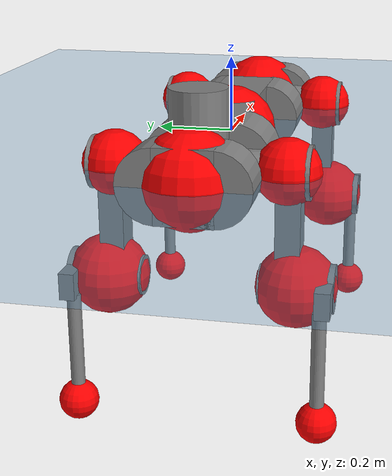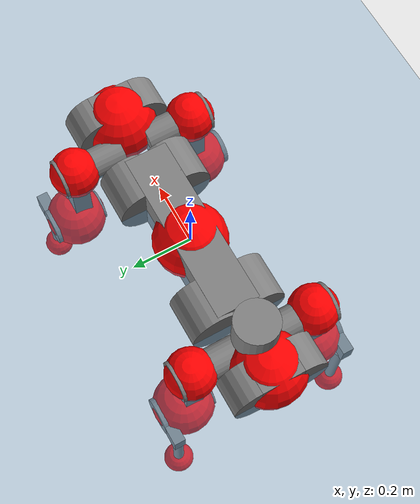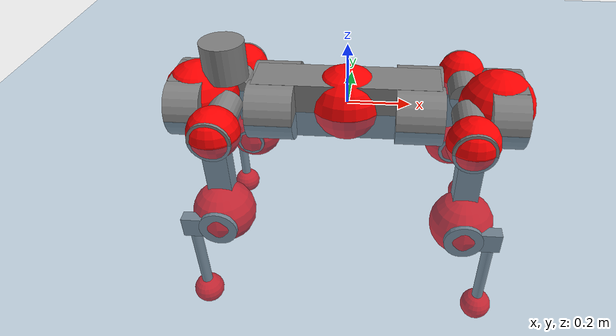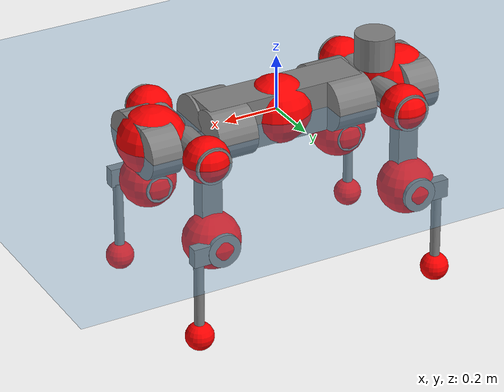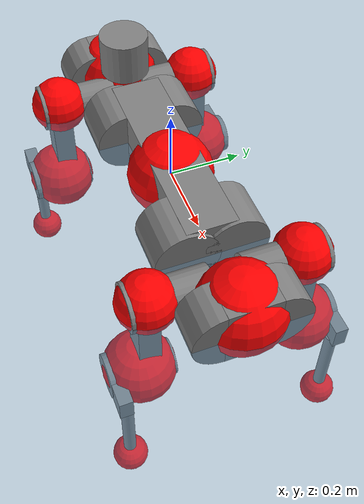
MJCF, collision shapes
<mujoco model="anymal_c">
  <compiler angle="radian" assetdir="assets" balanceinertia="true" inertiafromgeom="false"/>

  <option timestep="0.005" density="1.2" viscosity="2e-05"/>

  <size nkey="1"/>

  <visual>
    <quality shadowsize="8192"/>
    <map shadowclip="0.5"/>
  </visual>

  <default>
    <default class="/">
      <material specular="0" shininess="0.25"/>
      <geom contype="0" conaffinity="0" group="1" solref="-1000 -80"/>
      <site size="0.01 0.005 0.005" group="5"/>
      <general forcelimited="true" forcerange="-80 80" biastype="affine" gainprm="80" biasprm="0 -80 -2"/>
      <default class="anymal_c">
        <joint armature="0.01" damping="0.01" frictionloss="0.1"/>
        <default class="visual">
          <geom type="mesh" group="2"/>
          <default class="visual_zflip"/>
        </default>
        <default class="collision">
          <geom type="cylinder" group="3"/>
          <default class="foot">
            <geom size="0.03 0 0" type="sphere" condim="6" priority="1" friction="0.8 0.02 0.01" solimp="0.015 1 0.03"/>
          </default>
        </default>
      </default>
      <default class="reward_collision_sphere">
        <geom group="5" rgba="1 0 0 1"/>
      </default>
    </default>
  </default>

  <asset>
    <texture type="skybox" colorspace="auto" name="//unnamed_texture_0" builtin="gradient" rgb1="0.95 0.95 0.95" rgb2="0.95 0.95 0.95" width="100" height="600"/>
    <texture type="2d" colorspace="auto" name="texplane" builtin="checker" rgb1="0.345 0.575 0.748" rgb2="0.345 0.575 0.748" markrgb="1 1 1" width="512" height="512"/>
    <texture type="2d" colorspace="linear" name="base" file="base.png"/>
    <texture type="2d" colorspace="linear" name="top_shell" file="top_shell.png"/>
    <texture type="2d" colorspace="linear" name="bottom_shell" file="bottom_shell.png"/>
    <texture type="2d" colorspace="linear" name="remote" file="remote.png"/>
    <texture type="2d" colorspace="linear" name="hatch" file="hatch.png"/>
    <texture type="2d" colorspace="linear" name="handle" file="handle.png"/>
    <texture type="2d" colorspace="linear" name="face" file="face.png"/>
    <texture type="2d" colorspace="linear" name="battery" file="battery.png"/>
    <texture type="2d" colorspace="linear" name="lidar_cage" file="lidar_cage.png"/>
    <texture type="2d" colorspace="linear" name="depth_camera" file="depth_camera.png"/>
    <texture type="2d" colorspace="linear" name="wide_angle_camera" file="wide_angle_camera.png"/>
    <texture type="2d" colorspace="linear" name="lidar" file="lidar.png"/>
    <texture type="2d" colorspace="linear" name="drive" file="drive.png"/>
    <texture type="2d" colorspace="linear" name="hip_l" file="hip_l.png"/>
    <texture type="2d" colorspace="linear" name="shank_l" file="shank_l.png"/>
    <texture type="2d" colorspace="linear" name="foot" file="foot.png"/>
    <texture type="2d" colorspace="linear" name="thigh" file="thigh.png"/>
    <texture type="2d" colorspace="linear" name="shank_r" file="shank_r.png"/>
    <texture type="2d" colorspace="linear" name="hip_r" file="hip_r.png"/>
    <material name="MatPlane" class="/" texture="texplane" texuniform="true" texrepeat="2 2" specular="0.9" shininess="0.5"/>
    <material name="black_plastic" class="/" rgba="0.007 0.007 0.007 1"/>
    <material name="green" class="/" rgba="0.052 0.178 0.033 1"/>
    <material name="red" class="/" rgba="0.178 0.006 0.005 1"/>
    <material name="yellow" class="/" rgba="0.178 0.119 0.006 1"/>
    <material name="lwl" class="/" rgba="0.8 0.8 0.8 1"/>
    <material name="base" class="/" texture="base"/>
    <material name="top_shell" class="/" texture="top_shell"/>
    <material name="bottom_shell" class="/" texture="bottom_shell"/>
    <material name="hip_l" class="/" texture="hip_l"/>
    <material name="thigh" class="/" texture="thigh"/>
    <material name="shank_l" class="/" texture="shank_l"/>
    <material name="foot" class="/" texture="foot"/>
    <material name="hip_r" class="/" texture="hip_r"/>
    <material name="shank" class="/" texture="shank_r"/>
    <material name="hatch" class="/" texture="hatch"/>
    <material name="remote" class="/" texture="remote"/>
    <material name="handle" class="/" texture="handle"/>
    <material name="face" class="/" texture="face"/>
    <material name="depth_camera" class="/" texture="depth_camera"/>
    <material name="wide_angle_camera" class="/" texture="wide_angle_camera"/>
    <material name="battery" class="/" texture="battery"/>
    <material name="lidar_cage" class="/" texture="lidar_cage"/>
    <material name="lidar" class="/" texture="lidar"/>
    <material name="drive" class="/" texture="drive"/>
    <mesh name="base_0" class="/" file="base_0.obj"/>
    <mesh name="base_1" class="/" file="base_1.obj"/>
    <mesh name="base_2" class="/" file="base_2.obj"/>
    <mesh name="base_3" class="/" file="base_3.obj"/>
    <mesh name="base_4" class="/" file="base_4.obj"/>
    <mesh name="base_5" class="/" file="base_5.obj"/>
    <mesh name="top_shell" class="/" file="top_shell.obj"/>
    <mesh name="bottom_shell" class="/" file="bottom_shell.obj"/>
    <mesh name="remote" class="/" file="remote.obj"/>
    <mesh name="handle" class="/" file="handle.obj"/>
    <mesh name="face" class="/" file="face.obj"/>
    <mesh name="wide_angle_camera" class="/" file="wide_angle_camera.obj"/>
    <mesh name="depth_camera" class="/" file="depth_camera.obj"/>
    <mesh name="battery" class="/" file="battery.obj"/>
    <mesh name="lidar_cage" class="/" file="lidar_cage.obj"/>
    <mesh name="lidar" class="/" file="lidar.obj"/>
    <mesh name="drive" class="/" file="drive.obj"/>
    <mesh name="hip_l" class="/" file="hip_l.obj"/>
    <mesh name="thigh" class="/" file="thigh.obj"/>
    <mesh name="shank_l" class="/" file="shank_l.obj"/>
    <mesh name="foot" class="/" file="foot.obj"/>
    <mesh name="hip_r" class="/" file="hip_r.obj"/>
    <mesh name="hatch" class="/" file="hatch.obj"/>
    <mesh name="shank_r" class="/" file="shank_r.obj"/>
  </asset>

  <worldbody>
    <geom name="floor" class="/" size="100 100 0.125" type="plane" group="0" material="MatPlane"/>
    <light name="toplight_shadow" class="/" pos="0 0 5" dir="0.0990148 0.0990148 -0.990148" type="directional" ambient="0.04 0.04 0.04" diffuse="0.55 0.55 0.55" specular="0.12 0.12 0.12"/>
    <light name="toplight_fill" class="/" pos="0 0 5" dir="0.0990148 0.0990148 -0.990148" type="directional" castshadow="false" ambient="0.04 0.04 0.04" diffuse="0.3 0.3 0.3" specular="0.08 0.08 0.08"/>
    <body name="trunk" childclass="anymal_c" pos="-0.00166811 0.000158784 0.000921751" quat="1 -0.00022601 -9.44141e-06 0.000172577">
      <inertial pos="0.000498413 -0.000601191 0.0489532" quat="0.503752 0.499144 0.498869 0.498216" mass="19.7287" diaginertia="0.854087 0.530752 0.228268"/>
      <joint name="//unnamed_joint_0" type="free" armature="0" damping="0" frictionloss="0"/>
      <geom name="//unnamed_geom_1" class="visual" material="green" mesh="base_0"/>
      <geom name="//unnamed_geom_2" class="visual" material="yellow" mesh="base_1"/>
      <geom name="//unnamed_geom_3" class="visual" material="red" mesh="base_2"/>
      <geom name="//unnamed_geom_4" class="visual" material="black_plastic" mesh="base_3"/>
      <geom name="//unnamed_geom_5" class="visual" material="lwl" mesh="base_4"/>
      <geom name="//unnamed_geom_6" class="visual" material="base" mesh="base_5"/>
      <geom name="trunk_1" class="collision" size="0.293073 0.0707419 0.0909538" type="box"/>
      <geom name="trunk_2" class="collision" size="0.0909538 0.0732684" pos="0.230089 0.0676985 0" quat="0.707107 0 0.707107 0"/>
      <geom name="trunk_3" class="collision" size="0.0909538 0.0732684" pos="-0.230089 0.0676985 0" quat="0.707107 0 0.707107 0"/>
      <geom name="trunk_4" class="collision" size="0.0909538 0.0732684" pos="0.230089 -0.0676985 0" quat="0.707107 0 0.707107 0"/>
      <geom name="trunk_5" class="collision" size="0.0909538 0.0732684" pos="-0.230089 -0.0676985 0" quat="0.707107 0 0.707107 0"/>
      <geom name="//unnamed_geom_12" class="visual" material="top_shell" mesh="top_shell"/>
      <geom name="//unnamed_geom_13" class="visual" material="bottom_shell" mesh="bottom_shell"/>
      <geom name="//unnamed_geom_14" class="visual" material="remote" mesh="remote"/>
      <geom name="//unnamed_geom_15" class="visual" material="handle" mesh="handle"/>
      <geom name="//unnamed_geom_16" class="visual" pos="0.438492 0 0" quat="1 0 0 0" material="face" mesh="face"/>
      <geom name="trunk_6" class="collision" size="0.0555829 0.0707419 0.0909538" pos="0.496676 0 0" type="box"/>
      <geom name="//unnamed_geom_18" class="collision" size="0.0909538 0.0555829" pos="0.496676 0.0676985 0" quat="0.707107 0 0.707107 0"/>
      <geom name="//unnamed_geom_19" class="collision" size="0.0909538 0.0555829" pos="0.496676 -0.0676985 0" quat="0.707107 0 0.707107 0"/>
      <geom name="//unnamed_geom_20" class="visual" pos="0.488369 0 -0.02901" quat="0.965926 0 0.258819 0" material="depth_camera" mesh="depth_camera"/>
      <geom name="//unnamed_geom_21" class="visual" pos="0.542694 0 0.0150716" material="wide_angle_camera" mesh="wide_angle_camera"/>
      <geom name="//unnamed_geom_22" class="visual_zflip" pos="-0.438492 0 0" quat="0 0 0 1" material="face" mesh="face"/>
      <geom name="trunk_7" class="collision" size="0.0555829 0.0707419 0.0909538" pos="-0.496676 0 0" quat="0 0 0 1" type="box"/>
      <geom name="//unnamed_geom_24" class="collision" size="0.0909538 0.0555829" pos="-0.496676 -0.0676985 0" quat="0 -0.707107 0 0.707107"/>
      <geom name="//unnamed_geom_25" class="collision" size="0.0909538 0.0555829" pos="-0.496676 0.0676985 0" quat="0 -0.707107 0 0.707107"/>
      <geom name="//unnamed_geom_26" class="visual" pos="-0.488369 0 -0.02901" quat="0 -0.258819 0 0.965926" material="depth_camera" mesh="depth_camera"/>
      <geom name="//unnamed_geom_27" class="visual_zflip" pos="-0.542694 0 0.0150716" quat="0 0 0 1" material="wide_angle_camera" mesh="wide_angle_camera"/>
      <geom name="//unnamed_geom_28" class="visual" material="battery" mesh="battery"/>
      <geom name="//unnamed_geom_29" class="visual" pos="0 0.0727531 0.0296355" quat="0.683013 -0.183013 0.183013 0.683013" material="depth_camera" mesh="depth_camera"/>
      <geom name="//unnamed_geom_30" class="visual" pos="0 -0.0727531 0.0296355" quat="0.683013 0.183013 0.183013 -0.683013" material="depth_camera" mesh="depth_camera"/>
      <geom name="//unnamed_geom_31" class="visual" pos="-0.385069 0 0.073999" quat="1 0 0 0" material="lidar_cage" mesh="lidar_cage"/>
      <geom name="trunk_8" class="collision" size="0.0707419 0.0606359" pos="-0.385069 0 0.134406"/>
      <geom name="//unnamed_geom_33" class="visual" pos="-0.385069 -3.56573e-05 0.143165" quat="0.707107 0 0 -0.707107" material="lidar" mesh="lidar"/>
      <geom name="//unnamed_geom_34" class="visual" pos="0.317259 0.100595 -6.84271e-10" quat="0.258819 0.965926 0 0" material="drive" mesh="drive"/>
      <geom name="//unnamed_geom_35" class="visual" pos="0.317259 -0.100595 6.84271e-10" quat="0.258819 -0.965926 0 0" material="drive" mesh="drive"/>
      <geom name="//unnamed_geom_36" class="visual" pos="-0.317259 0.100595 6.84271e-10" quat="0 0 0.965926 -0.258819" material="drive" mesh="drive"/>
      <geom name="//unnamed_geom_37" class="visual" pos="-0.317259 -0.100595 -6.84271e-10" quat="0 0 -0.965926 -0.258819" material="drive" mesh="drive"/>
      <geom name="//unnamed_geom_38" class="visual" pos="0.122714 0 0.0734956" quat="1 0 0 0" material="hatch" mesh="hatch"/>
      <geom name="//unnamed_geom_39" class="reward_collision_sphere" size="0.121272"/>
      <geom name="//unnamed_geom_40" class="reward_collision_sphere" size="0.121272" pos="0.476047 0 0"/>
      <geom name="//unnamed_geom_41" class="reward_collision_sphere" size="0.121272" pos="-0.476047 0 0"/>
      <site name="imu" pos="0.261547 0.00391537 0.0481617" size="0.010106"/>
      <camera name="track" pos="0 -1.93424 0" quat="0.707107 0.707107 0 0" mode="trackcom"/>
      <camera name="ego_camera" pos="0.476047 0 -0.0402716" quat="-0.5 -0.5 0.5 0.5"/>
      <body name="LF_HIP" pos="0.318558 0.101647 -0.00136766" quat="0.258107 0.966116 0.000428084 -3.49098e-05">
        <inertial pos="0.0580843 -0.0135768 -0.00734947" quat="-0.128043 0.710077 -0.135165 0.679063" mass="2.88685" diaginertia="0.00781069 0.00413821 0.0034098"/>
        <joint name="LF_HAA" pos="0 0 0" axis="0.999997 0.00203746 -0.00148713" range="-0.720124 0.469408" armature="0.0102476" damping="0.0121976" frictionloss="0.0960998"/>
        <geom name="//unnamed_geom_42" class="visual" pos="0 -4.02526e-05 6.61145e-06" quat="0.258819 -0.965926 0 0" material="hip_l" mesh="hip_l"/>
        <geom name="//unnamed_geom_43" class="visual" pos="0.0633672 -0.0756019 -0.0439422" quat="0.183013 -0.683013 0.683013 0.183013" material="drive" mesh="drive"/>
        <geom name="//unnamed_geom_44" class="collision" size="0.0505299 0.0707419" pos="0.0633672 -0.0115666 -0.00695188" quat="-0.353553 -0.612372 0.612372 -0.353553"/>
        <body name="LF_THIGH" pos="0.0632372 -0.0705579 -0.0425135" quat="0.183018 -0.683001 0.683017 0.183033">
          <inertial pos="0.0345122 -7.29593e-05 -0.246099" quat="0.993201 -0.00507214 -0.0808128 0.0836348" mass="3.18328" diaginertia="0.0400002 0.0252685 0.00438815"/>
          <joint name="LF_HFE" pos="0 0 0" axis="0.999994 0.00173968 0.00282441" stiffness="0.0110143" range="-3.15786 3.14219" armature="0.0101709" damping="0" frictionloss="0.0962056"/>
          <geom name="//unnamed_geom_45" class="visual" pos="0.00180577 2.84548e-06 0" quat="0.707107 0 0 -0.707107" material="thigh" mesh="thigh"/>
          <geom name="//unnamed_geom_46" class="collision" size="0.0656889 0.0404239" pos="0.0423153 0 0" quat="0.5 0.5 -0.5 -0.5"/>
          <geom name="//unnamed_geom_47" class="collision" size="0.0378974 0.0303179 0.142812" pos="0.0317365 0 -0.142273" quat="0.707107 0 0 -0.707107" type="box"/>
          <geom name="//unnamed_geom_48" class="visual" pos="0.106106 0 -0.286935" quat="1 0 0 0" material="drive" mesh="drive"/>
          <geom name="//unnamed_geom_49" class="collision" size="0.0505299 0.0707419" pos="0.0320538 0 -0.286935" quat="0.707107 0 0.707107 0"/>
          <geom name="//unnamed_geom_50" class="reward_collision_sphere" size="0.0808478" pos="0.0264471 0 0"/>
          <body name="LF_SHANK" pos="0.106385 -6.43015e-05 -0.287682" quat="1 -0.000178717 -0.000132724 -0.000176627">
            <inertial pos="0.00507774 -0.0601012 -0.0813911" quat="0.993325 -0.113175 -0.00410159 -0.0219305" mass="0.604342" diaginertia="0.0135747 0.00772233 0.001163"/>
            <joint name="LF_KFE" pos="0 0 0" axis="0.999994 0.00359852 0.000177547" range="-3.14593 3.12329" armature="0.0105987" damping="0.00949385" frictionloss="0.0983228"/>
            <geom name="//unnamed_geom_51" class="visual" pos="0.000588823 0.00313964 0" quat="0.707107 0 0 -0.707107" material="shank_l" mesh="shank_l"/>
            <geom name="LF_kfe_act" class="collision" size="0.0606359 0.020212" pos="0.0211576 0 0" quat="0.5 0.5 -0.5 -0.5"/>
            <geom name="//unnamed_geom_53" class="collision" size="0.0581084 0.0341077 0.0192014" pos="0.0211576 -0.0556085 0" quat="0.5 0.5 -0.5 -0.5" type="box"/>
            <geom name="//unnamed_geom_54" class="visual" pos="0.0138052 -0.0840466 -0.340265" quat="0.382683 0 0 -0.92388" material="foot" mesh="foot"/>
            <geom name="LF_calf" class="collision" size="0.0176855 0.142749" pos="0.0138054 -0.0850584 -0.170132" quat="0.707107 0 0 -0.707107"/>
            <geom name="LF_foot" class="foot" size="0.0291983" pos="0.0138054 -0.0850584 -0.317612" quat="0.707107 0 0 -0.707107"/>
            <geom name="//unnamed_geom_57" class="reward_collision_sphere" size="0.10106" pos="-0.0528941 0 0"/>
            <geom name="//unnamed_geom_58" class="reward_collision_sphere" size="0.0505299" pos="0.0138054 -0.0850584 -0.317612"/>
            <site name="LF_foot" class="foot" pos="0.0138054 -0.0850584 -0.317612" quat="0.707107 0 0 -0.707107" size="0.010106"/>
          </body>
        </body>
      </body>
      <body name="RF_HIP" pos="0.317636 -0.100054 0.000703671" quat="0.258751 -0.965944 -0.000253503 0.000368075">
        <inertial pos="0.0605838 0.014566 -0.00851842" quat="0.134771 0.679203 0.127211 0.710167" mass="2.94175" diaginertia="0.00769396 0.00414557 0.00341753"/>
        <joint name="RF_HAA" pos="0 0 0" axis="0.999998 -0.00182146 -0.000488652" range="-0.509079 0.715846" armature="0.00917466" damping="0.00992648" frictionloss="0.109821"/>
        <geom name="//unnamed_geom_59" class="visual" pos="0 4.02523e-05 6.61144e-06" quat="0.258819 0.965926 0 0" material="hip_r" mesh="hip_r"/>
        <geom name="//unnamed_geom_60" class="visual" pos="0.0633672 0.0756019 -0.0439422" quat="0.183013 0.683013 0.683013 -0.183013" material="drive" mesh="drive"/>
        <geom name="//unnamed_geom_61" class="collision" size="0.0505299 0.0707419" pos="0.0633672 0.0115666 -0.00695188" quat="-0.353553 0.612372 0.612372 0.353553"/>
        <body name="RF_THIGH" pos="0.0642239 0.0699666 -0.0418891" quat="0.18358 0.682752 0.683113 -0.183044">
          <inertial pos="0.0327446 -0.00196344 -0.246722" quat="0.992869 -0.00681244 -0.0814796 0.0867567" mass="3.1226" diaginertia="0.0405503 0.0258707 0.00434484"/>
          <joint name="RF_HFE" pos="0 0 0" axis="0.999987 -0.00384692 0.00335161" stiffness="0.00358035" range="-3.13091 3.15454" armature="0.0101569" damping="0.0100375" frictionloss="0.0960877"/>
          <geom name="//unnamed_geom_62" class="visual" pos="0.00180577 2.84548e-06 0" quat="0.707107 0 0 -0.707107" material="thigh" mesh="thigh"/>
          <geom name="//unnamed_geom_63" class="collision" size="0.0656889 0.0404239" pos="0.0423153 0 0" quat="0.5 0.5 0.5 0.5"/>
          <geom name="//unnamed_geom_64" class="collision" size="0.0378974 0.0303179 0.142812" pos="0.0317365 0 -0.142273" quat="0.707107 0 0 0.707107" type="box"/>
          <geom name="//unnamed_geom_65" class="visual" pos="0.106106 0 -0.286935" quat="1 0 0 0" material="drive" mesh="drive"/>
          <geom name="//unnamed_geom_66" class="collision" size="0.0505299 0.0707419" pos="0.0320538 0 -0.286935" quat="0.707107 0 0.707107 0"/>
          <geom name="//unnamed_geom_67" class="reward_collision_sphere" size="0.0808478" pos="0.0264471 0 0"/>
          <body name="RF_SHANK" pos="0.105192 -0.000156339 -0.286683" quat="1 1.56245e-05 -2.27672e-05 0.000148115">
            <inertial pos="0.00507568 0.0594339 -0.0807467" quat="0.992966 0.115269 -0.00323455 0.0268622" mass="0.61034" diaginertia="0.013726 0.00788323 0.00116446"/>
            <joint name="RF_KFE" pos="0 0 0" axis="0.999973 -0.0073064 -0.00077403" range="-3.14463 3.12724" armature="0.0101604" damping="0.00453205" frictionloss="0.100292"/>
            <geom name="//unnamed_geom_68" class="visual" pos="0.00058882 -0.00313963 0" quat="0.707107 0 0 0.707107" material="shank" mesh="shank_r"/>
            <geom name="RF_kfe_act" class="collision" size="0.0606359 0.020212" pos="0.0211576 0 0" quat="0.5 0.5 0.5 0.5"/>
            <geom name="//unnamed_geom_70" class="collision" size="0.0581084 0.0341077 0.0192014" pos="0.0211576 0.0556085 0" quat="0.5 0.5 0.5 0.5" type="box"/>
            <geom name="//unnamed_geom_71" class="visual" pos="0.0138055 0.0840466 -0.340265" quat="0.382683 0 0 0.92388" material="foot" mesh="foot"/>
            <geom name="RF_calf" class="collision" size="0.0176855 0.142749" pos="0.0138054 0.0850584 -0.170132" quat="0.707107 0 0 0.707107"/>
            <geom name="RF_foot" class="foot" size="0.0300959" pos="0.0138054 0.0850584 -0.317612" quat="0.707107 0 0 0.707107"/>
            <geom name="//unnamed_geom_74" class="reward_collision_sphere" size="0.10106" pos="-0.0528941 0 0"/>
            <geom name="//unnamed_geom_75" class="reward_collision_sphere" size="0.0505299" pos="0.0138054 0.0850584 -0.317612"/>
            <site name="RF_foot" class="foot" pos="0.0138054 0.0850584 -0.317612" quat="0.707107 0 0 0.707107" size="0.010106"/>
          </body>
        </body>
      </body>
      <body name="LH_HIP" pos="-0.317223 0.10045 -0.000100211" quat="8.53286e-06 -0.000849743 0.966121 -0.258088">
        <inertial pos="0.061799 0.0145426 -0.00802823" quat="0.135424 0.67888 0.127972 0.710215" mass="2.86685" diaginertia="0.00774942 0.00415751 0.00340557"/>
        <joint name="LH_HAA" pos="0 0 0" axis="1 -0.000797606 1.37964e-05" range="-0.499579 0.733255" armature="0.0100584" damping="0.00975249" frictionloss="0.0965577"/>
        <geom name="//unnamed_geom_76" class="visual" pos="0 4.02523e-05 6.61144e-06" quat="-0.258819 -0.965926 0 0" material="hip_r" mesh="hip_r"/>
        <geom name="//unnamed_geom_77" class="visual" pos="0.0633672 0.0756019 -0.0439422" quat="0.183013 0.683013 0.683013 -0.183013" material="drive" mesh="drive"/>
        <geom name="//unnamed_geom_78" class="collision" size="0.0505299 0.0707419" pos="0.0633672 0.0115666 -0.00695188" quat="-0.353553 0.612372 0.612372 0.353553"/>
        <body name="LH_THIGH" pos="0.0610565 0.0691514 -0.042514" quat="0.183393 0.682828 0.683018 -0.183298">
          <inertial pos="0.0328766 -0.000466762 -0.247619" quat="0.992482 -0.00822489 -0.0847332 0.0879316" mass="3.13606" diaginertia="0.0398475 0.0251514 0.00428746"/>
          <joint name="LH_HFE" pos="0 0 0" axis="0.999999 0.000107784 -0.00133867" stiffness="0.000311322" range="-3.15194 3.14274" armature="0.0102565" damping="0" frictionloss="0.105029"/>
          <geom name="//unnamed_geom_79" class="visual" pos="0.00180577 2.84548e-06 0" quat="0.707107 0 0 -0.707107" material="thigh" mesh="thigh"/>
          <geom name="//unnamed_geom_80" class="collision" size="0.0656889 0.0404239" pos="0.0423153 0 0" quat="0.5 0.5 -0.5 -0.5"/>
          <geom name="//unnamed_geom_81" class="collision" size="0.0378974 0.0303179 0.142812" pos="0.0317365 0 -0.142273" quat="0.707107 0 0 -0.707107" type="box"/>
          <geom name="//unnamed_geom_82" class="visual" pos="0.106106 0 -0.286935" quat="1 0 0 0" material="drive" mesh="drive"/>
          <geom name="//unnamed_geom_83" class="collision" size="0.0505299 0.0707419" pos="0.0320538 0 -0.286935" quat="0.707107 0 0.707107 0"/>
          <geom name="//unnamed_geom_84" class="reward_collision_sphere" size="0.0808478" pos="0.0264471 0 0"/>
          <body name="LH_SHANK" pos="0.105067 -6.52032e-05 -0.287919" quat="1 1.14022e-06 -2.49654e-06 -6.3119e-05">
            <inertial pos="0.00572806 0.0592801 -0.0819815" quat="0.992943 0.115684 -0.000826249 0.0260975" mass="0.61037" diaginertia="0.0134553 0.00780281 0.00116075"/>
            <joint name="LH_KFE" pos="0 0 0" axis="0.999996 -0.00230842 0.00189116" range="-3.13699 3.13947" armature="0.0104798" damping="0" frictionloss="0.102751"/>
            <geom name="//unnamed_geom_85" class="visual" pos="0.00058882 -0.00313963 0" quat="-0.707107 0 0 -0.707107" material="shank" mesh="shank_r"/>
            <geom name="LH_kfe_act" class="collision" size="0.0606359 0.020212" pos="0.0211576 0 0" quat="0.5 0.5 -0.5 -0.5"/>
            <geom name="//unnamed_geom_87" class="collision" size="0.0581084 0.0341077 0.0192014" pos="0.0211576 0.0556085 0" quat="0.5 0.5 -0.5 -0.5" type="box"/>
            <geom name="//unnamed_geom_88" class="visual" pos="0.0138055 0.0840466 -0.340265" quat="-0.382683 0 0 -0.92388" material="foot" mesh="foot"/>
            <geom name="LH_calf" class="collision" size="0.0176855 0.142749" pos="0.0138054 0.0850584 -0.170132" quat="0.707107 0 0 -0.707107"/>
            <geom name="LH_foot" class="foot" size="0.0311836" pos="0.0138054 0.0850584 -0.317612" quat="0.707107 0 0 -0.707107"/>
            <geom name="//unnamed_geom_91" class="reward_collision_sphere" size="0.10106" pos="-0.0528941 0 0"/>
            <geom name="//unnamed_geom_92" class="reward_collision_sphere" size="0.0505299" pos="0.0138054 0.0850584 -0.317612"/>
            <site name="LH_foot" class="foot" pos="0.0138054 0.0850584 -0.317612" quat="0.707107 0 0 -0.707107" size="0.010106"/>
          </body>
        </body>
      </body>
      <body name="RH_HIP" pos="-0.317296 -0.102389 0.000897821" quat="2.8978e-05 -3.8735e-05 -0.965915 -0.25886">
        <inertial pos="0.059928 -0.0144849 -0.00850624" quat="-0.126205 0.705758 -0.13759 0.683408" mass="2.8811" diaginertia="0.00771328 0.0041479 0.00345581"/>
        <joint name="RH_HAA" pos="0 0 0" axis="0.999999 0.00126488 -1.44585e-05" range="-0.713606 0.491016" armature="0.0109617" damping="0.0209245" frictionloss="0.0961113"/>
        <geom name="//unnamed_geom_93" class="visual" pos="0 -4.02526e-05 6.61145e-06" quat="-0.258819 0.965926 0 0" material="hip_l" mesh="hip_l"/>
        <geom name="//unnamed_geom_94" class="visual" pos="0.0633672 -0.0756019 -0.0439422" quat="-0.183013 0.683013 -0.683013 -0.183013" material="drive" mesh="drive"/>
        <geom name="//unnamed_geom_95" class="collision" size="0.0505299 0.0707419" pos="0.0633672 -0.0115666 -0.00695188" quat="0.353553 0.612372 -0.612372 0.353553"/>
        <body name="RH_THIGH" pos="0.0637259 -0.0703969 -0.0432805" quat="-0.183196 0.683279 -0.682687 -0.183049">
          <inertial pos="0.0328505 0.000901741 -0.247151" quat="0.993135 -0.00454314 -0.0802198 0.0850172" mass="3.24312" diaginertia="0.0410056 0.0255026 0.0043056"/>
          <joint name="RH_HFE" pos="0 0 0" axis="0.999994 -0.00279758 -0.00196503" range="-3.1663 3.13344" armature="0.0096465" damping="0.0074232" frictionloss="0.102351"/>
          <geom name="//unnamed_geom_96" class="visual" pos="0.00180577 2.84548e-06 0" quat="0.707107 0 0 -0.707107" material="thigh" mesh="thigh"/>
          <geom name="//unnamed_geom_97" class="collision" size="0.0656889 0.0404239" pos="0.0423153 0 0" quat="0.5 0.5 0.5 0.5"/>
          <geom name="//unnamed_geom_98" class="collision" size="0.0378974 0.0303179 0.142812" pos="0.0317365 0 -0.142273" quat="0.707107 0 0 0.707107" type="box"/>
          <geom name="//unnamed_geom_99" class="visual" pos="0.106106 0 -0.286935" quat="1 0 0 0" material="drive" mesh="drive"/>
          <geom name="//unnamed_geom_100" class="collision" size="0.0505299 0.0707419" pos="0.0320538 0 -0.286935" quat="0.707107 0 0.707107 0"/>
          <geom name="//unnamed_geom_101" class="reward_collision_sphere" size="0.0808478" pos="0.0264471 0 0"/>
          <body name="RH_SHANK" pos="0.10358 0.00037567 -0.286668" quat="1 4.08634e-06 1.32307e-05 3.349e-05">
            <inertial pos="0.00792346 -0.0592335 -0.0820829" quat="0.992945 -0.114742 -0.0017301 -0.0298465" mass="0.608159" diaginertia="0.0130246 0.00764137 0.00112692"/>
            <joint name="RH_KFE" pos="0 0 0" axis="0.999998 -0.00181051 0.000329883" range="-3.11966 3.177" armature="0.00991214" damping="0.0107866" frictionloss="0.0993286"/>
            <geom name="//unnamed_geom_102" class="visual" pos="0.000588823 0.00313964 0" quat="0.707107 0 0 -0.707107" material="shank_l" mesh="shank_l"/>
            <geom name="RH_kfe_act" class="collision" size="0.0606359 0.020212" pos="0.0211576 0 0" quat="0.5 0.5 0.5 0.5"/>
            <geom name="//unnamed_geom_104" class="collision" size="0.0581084 0.0341077 0.0192014" pos="0.0211576 -0.0556085 0" quat="0.5 0.5 0.5 0.5" type="box"/>
            <geom name="//unnamed_geom_105" class="visual" pos="0.0138052 -0.0840466 -0.340265" quat="0.382683 0 0 -0.92388" material="foot" mesh="foot"/>
            <geom name="RH_calf" class="collision" size="0.0176855 0.142749" pos="0.0138054 -0.0850584 -0.170132" quat="0.707107 0 0 0.707107"/>
            <geom name="RH_foot" class="foot" size="0.0289035" pos="0.0138054 -0.0850584 -0.317612" quat="0.707107 0 0 0.707107"/>
            <geom name="//unnamed_geom_108" class="reward_collision_sphere" size="0.10106" pos="-0.0528941 0 0"/>
            <geom name="//unnamed_geom_109" class="reward_collision_sphere" size="0.0505299" pos="0.0138054 -0.0850584 -0.317612"/>
            <site name="RH_foot" class="foot" pos="0.0138054 -0.0850584 -0.317612" quat="0.707107 0 0 0.707107" size="0.010106"/>
          </body>
        </body>
      </body>
    </body>
  </worldbody>

  <contact>
    <pair class="/" geom1="floor" geom2="LF_foot" name="//unnamed_contact_0"/>
    <pair class="/" geom1="floor" geom2="RF_foot" name="//unnamed_contact_1"/>
    <pair class="/" geom1="floor" geom2="LH_foot" name="//unnamed_contact_2"/>
    <pair class="/" geom1="floor" geom2="RH_foot" name="//unnamed_contact_3"/>
  </contact>

  <actuator>
    <general name="LF_HAA" class="/" joint="LF_HAA" forcerange="-82.0005 82.0005" gainprm="81.381" biasprm="0 -81.381 -1.91065"/>
    <general name="LF_HFE" class="/" joint="LF_HFE" forcerange="-83.7738 83.7738" gainprm="81.381" biasprm="0 -81.381 -1.91065"/>
    <general name="LF_KFE" class="/" joint="LF_KFE" forcerange="-80.5374 80.5374" gainprm="81.381" biasprm="0 -81.381 -1.91065"/>
    <general name="RF_HAA" class="/" joint="RF_HAA" forcerange="-87.7638 87.7638" gainprm="81.381" biasprm="0 -81.381 -1.91065"/>
    <general name="RF_HFE" class="/" joint="RF_HFE" forcerange="-82.7721 82.7721" gainprm="81.381" biasprm="0 -81.381 -1.91065"/>
    <general name="RF_KFE" class="/" joint="RF_KFE" forcerange="-80.8281 80.8281" gainprm="81.381" biasprm="0 -81.381 -1.91065"/>
    <general name="LH_HAA" class="/" joint="LH_HAA" forcerange="-80.8837 80.8837" gainprm="81.381" biasprm="0 -81.381 -1.91065"/>
    <general name="LH_HFE" class="/" joint="LH_HFE" forcerange="-80.4765 80.4765" gainprm="81.381" biasprm="0 -81.381 -1.91065"/>
    <general name="LH_KFE" class="/" joint="LH_KFE" forcerange="-82.6261 82.6261" gainprm="81.381" biasprm="0 -81.381 -1.91065"/>
    <general name="RH_HAA" class="/" joint="RH_HAA" forcerange="-82.9505 82.9505" gainprm="81.381" biasprm="0 -81.381 -1.91065"/>
    <general name="RH_HFE" class="/" joint="RH_HFE" forcerange="-82.4379 82.4379" gainprm="81.381" biasprm="0 -81.381 -1.91065"/>
    <general name="RH_KFE" class="/" joint="RH_KFE" forcerange="-85.1092 85.1092" gainprm="81.381" biasprm="0 -81.381 -1.91065"/>
  </actuator>

  <sensor>
    <gyro site="imu" name="imu_angular_velocity"/>
    <velocimeter site="imu" name="imu_linear_velocity"/>
    <framelinvel objtype="site" objname="LF_foot" name="LF_foot_global_linear_velocity"/>
    <framelinvel objtype="site" objname="RF_foot" name="RF_foot_global_linear_velocity"/>
    <framelinvel objtype="site" objname="LH_foot" name="LH_foot_global_linear_velocity"/>
    <framelinvel objtype="site" objname="RH_foot" name="RH_foot_global_linear_velocity"/>
  </sensor>

  <keyframe>
    <key name="home" qpos="0 0 0.55 1 0 0 0 0 0.4 -0.8 0 -0.4 0.8 0 -0.4 0.8 0 0.4 -0.8"/>
  </keyframe>
</mujoco>
